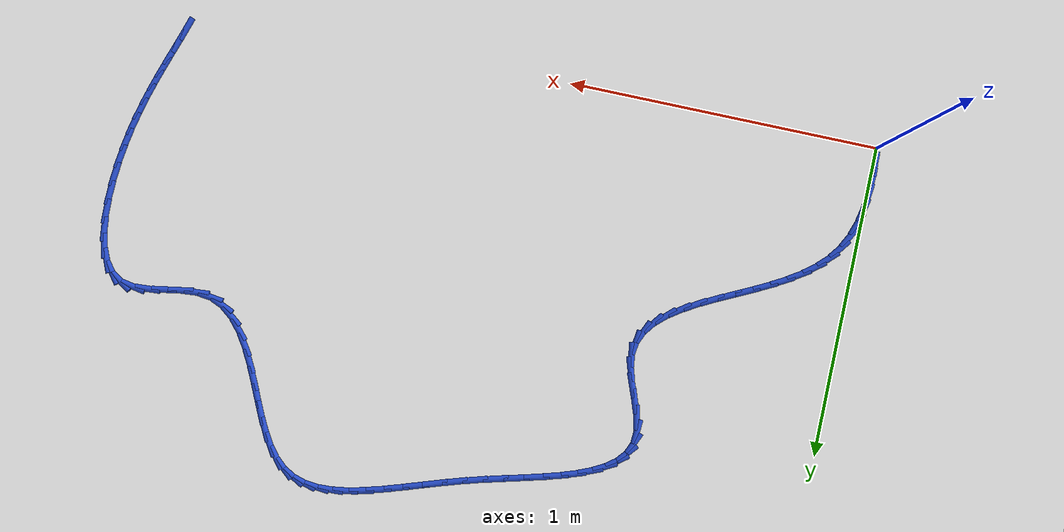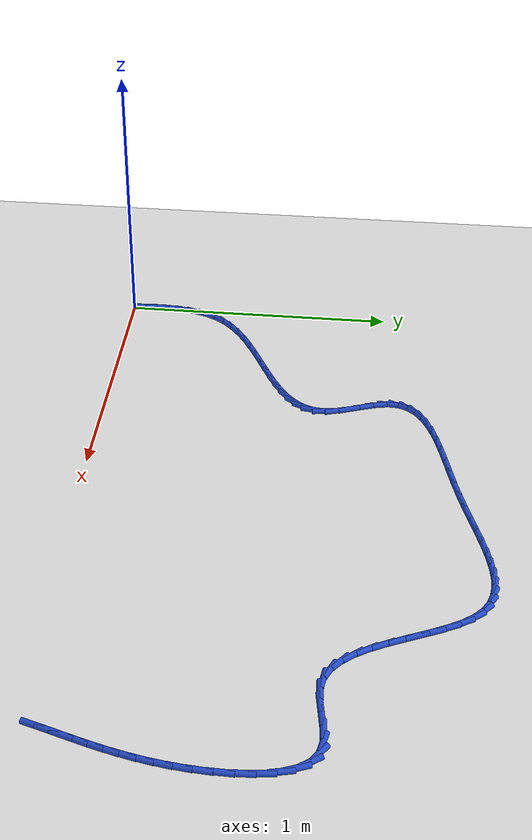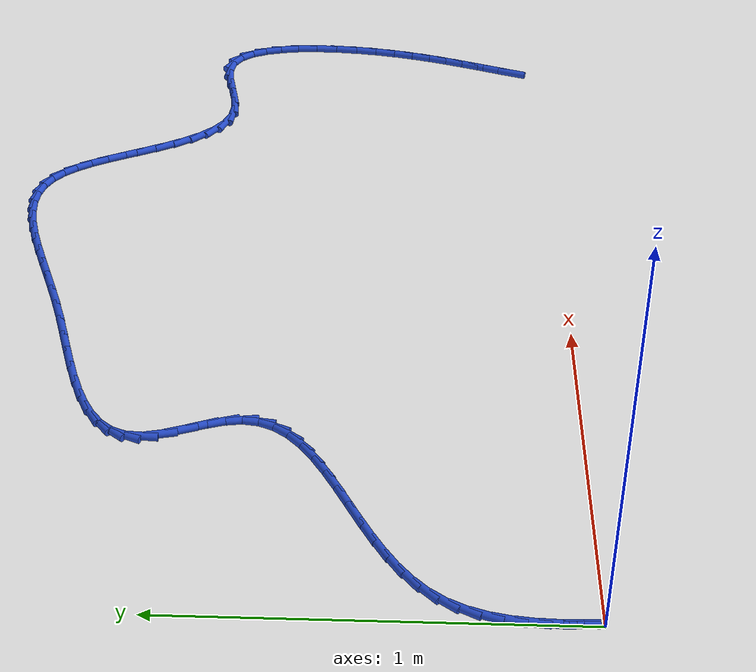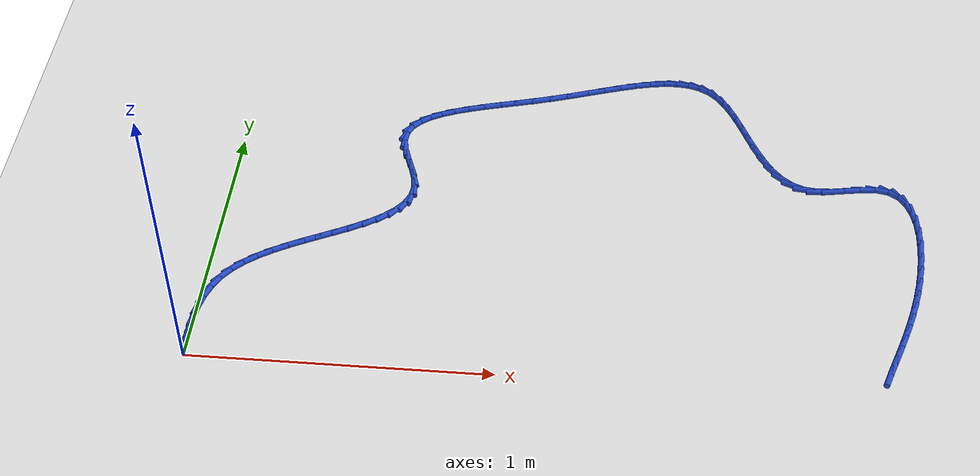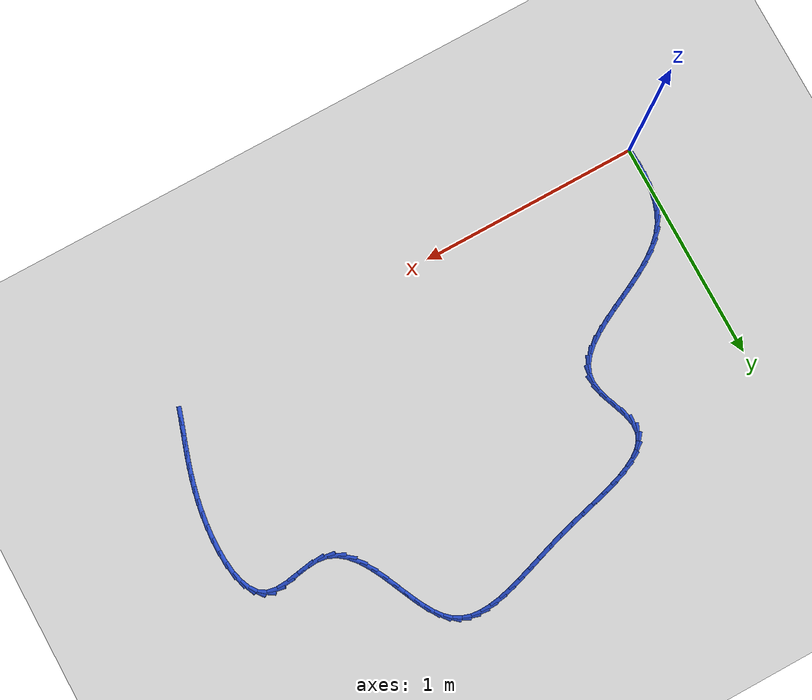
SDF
<sdf version="1.6">
 <world name="default">
  <model name="ground_plane">
   <static>1</static>
   <link name="link">
    <collision name="collision">
     <geometry><plane><normal>0 0 1</normal><size>100 100</size></plane></geometry>
     <surface><friction><ode><mu>100</mu><mu2>50</mu2></ode></friction></surface>
    </collision>
    <visual name="visual">
     <cast_shadows>0</cast_shadows>
     <geometry><plane><normal>0 0 1</normal><size>100 100</size></plane></geometry>
     <material>
      <script><uri>file://media/materials/scripts/gazebo.material</uri><name>Gazebo/WhiteGlow</name></script>
     </material>
    </visual>
   </link>
  </model>
  <model name="line">
   <link name="link_1">
    <pose>-0.002925904967437072 0.051086761017259785 0.01 0 1.57 -1.5534604865196697</pose>
    <collision name="collision">
     <geometry><cylinder><radius>0.01</radius><length>0.08</length></cylinder></geometry>
    </collision>
    <visual name="visual">
     <material>
      <script><name>Gazebo/Blue</name><uri>file://media/materials/scripts/gazebo.material</uri></script>
     </material>
     <geometry><cylinder><radius>0.01</radius><length>0.08</length></cylinder></geometry>
    </visual>
   </link>
   <link name="link_2">
    <pose>-0.003817468521577585 0.1025105295758779 0.01 0 1.57 1.5309589534957653</pose>
    <collision name="collision">
     <geometry><cylinder><radius>0.01</radius><length>0.08</length></cylinder></geometry>
    </collision>
    <visual name="visual">
     <material>
      <script><name>Gazebo/Blue</name><uri>file://media/materials/scripts/gazebo.material</uri></script>
     </material>
     <geometry><cylinder><radius>0.01</radius><length>0.08</length></cylinder></geometry>
    </visual>
   </link>
   <link name="link_3">
    <pose>-0.0017811809256003527 0.15359849311952 0.01 0 1.57 1.4543580626659827</pose>
    <collision name="collision">
     <geometry><cylinder><radius>0.01</radius><length>0.08</length></cylinder></geometry>
    </collision>
    <visual name="visual">
     <material>
      <script><name>Gazebo/Blue</name><uri>file://media/materials/scripts/gazebo.material</uri></script>
     </material>
     <geometry><cylinder><radius>0.01</radius><length>0.08</length></cylinder></geometry>
    </visual>
   </link>
   <link name="link_4">
    <pose>0.004076467557315798 0.20367783909185186 0.01 0 1.57 1.3557250557406852</pose>
    <collision name="collision">
     <geometry><cylinder><radius>0.01</radius><length>0.08</length></cylinder></geometry>
    </collision>
    <visual name="visual">
     <material>
      <script><name>Gazebo/Blue</name><uri>file://media/materials/scripts/gazebo.material</uri></script>
     </material>
     <geometry><cylinder><radius>0.01</radius><length>0.08</length></cylinder></geometry>
    </visual>
   </link>
   <link name="link_5">
    <pose>0.014648986663992034 0.25207575493653933 0.01 0 1.57 1.2328525527008483</pose>
    <collision name="collision">
     <geometry><cylinder><radius>0.01</radius><length>0.08</length></cylinder></geometry>
    </collision>
    <visual name="visual">
     <material>
      <script><name>Gazebo/Blue</name><uri>file://media/materials/scripts/gazebo.material</uri></script>
     </material>
     <geometry><cylinder><radius>0.01</radius><length>0.08</length></cylinder></geometry>
    </visual>
   </link>
   <link name="link_6">
    <pose>0.03082988613124953 0.29811942809724795 0.01 0 1.57 1.0855456857132073</pose>
    <collision name="collision">
     <geometry><cylinder><radius>0.01</radius><length>0.08</length></cylinder></geometry>
    </collision>
    <visual name="visual">
     <material>
      <script><name>Gazebo/Blue</name><uri>file://media/materials/scripts/gazebo.material</uri></script>
     </material>
     <geometry><cylinder><radius>0.01</radius><length>0.08</length></cylinder></geometry>
    </visual>
   </link>
   <link name="link_7">
    <pose>0.053512675695909465 0.3411360460176436 0.01 0 1.57 0.918838790433517</pose>
    <collision name="collision">
     <geometry><cylinder><radius>0.01</radius><length>0.08</length></cylinder></geometry>
    </collision>
    <visual name="visual">
     <material>
      <script><name>Gazebo/Blue</name><uri>file://media/materials/scripts/gazebo.material</uri></script>
     </material>
     <geometry><cylinder><radius>0.01</radius><length>0.08</length></cylinder></geometry>
    </visual>
   </link>
   <link name="link_8">
    <pose>0.08354329892548039 0.38047930402325114 0.01 0 1.57 0.764667883301005</pose>
    <collision name="collision">
     <geometry><cylinder><radius>0.01</radius><length>0.08</length></cylinder></geometry>
    </collision>
    <visual name="visual">
     <material>
      <script><name>Gazebo/Blue</name><uri>file://media/materials/scripts/gazebo.material</uri></script>
     </material>
     <geometry><cylinder><radius>0.01</radius><length>0.08</length></cylinder></geometry>
    </visual>
   </link>
   <link name="link_9">
    <pose>0.12068112088730405 0.4161084306353329 0.01 0 1.57 0.6477522191212495</pose>
    <collision name="collision">
     <geometry><cylinder><radius>0.01</radius><length>0.08</length></cylinder></geometry>
    </collision>
    <visual name="visual">
     <material>
      <script><name>Gazebo/Blue</name><uri>file://media/materials/scripts/gazebo.material</uri></script>
     </material>
     <geometry><cylinder><radius>0.01</radius><length>0.08</length></cylinder></geometry>
    </visual>
   </link>
   <link name="link_10">
    <pose>0.16360304735045483 0.4485858920041277 0.01 0 1.57 0.5635845289567744</pose>
    <collision name="collision">
     <geometry><cylinder><radius>0.01</radius><length>0.08</length></cylinder></geometry>
    </collision>
    <visual name="visual">
     <material>
      <script><name>Gazebo/Blue</name><uri>file://media/materials/scripts/gazebo.material</uri></script>
     </material>
     <geometry><cylinder><radius>0.01</radius><length>0.08</length></cylinder></geometry>
    </visual>
   </link>
   <link name="link_11">
    <pose>0.21093924175880024 0.4785002030463036 0.01 0 1.57 0.5063464724308085</pose>
    <collision name="collision">
     <geometry><cylinder><radius>0.01</radius><length>0.08</length></cylinder></geometry>
    </collision>
    <visual name="visual">
     <material>
      <script><name>Gazebo/Blue</name><uri>file://media/materials/scripts/gazebo.material</uri></script>
     </material>
     <geometry><cylinder><radius>0.01</radius><length>0.08</length></cylinder></geometry>
    </visual>
   </link>
   <link name="link_12">
    <pose>0.2613198675562078 0.5064398786785287 0.01 0 1.57 0.4716977754873825</pose>
    <collision name="collision">
     <geometry><cylinder><radius>0.01</radius><length>0.08</length></cylinder></geometry>
    </collision>
    <visual name="visual">
     <material>
      <script><name>Gazebo/Blue</name><uri>file://media/materials/scripts/gazebo.material</uri></script>
     </material>
     <geometry><cylinder><radius>0.01</radius><length>0.08</length></cylinder></geometry>
    </visual>
   </link>
   <link name="link_13">
    <pose>0.31337508818654486 0.5329934338174719 0.01 0 1.57 0.45714780488812573</pose>
    <collision name="collision">
     <geometry><cylinder><radius>0.01</radius><length>0.08</length></cylinder></geometry>
    </collision>
    <visual name="visual">
     <material>
      <script><name>Gazebo/Blue</name><uri>file://media/materials/scripts/gazebo.material</uri></script>
     </material>
     <geometry><cylinder><radius>0.01</radius><length>0.08</length></cylinder></geometry>
    </visual>
   </link>
   <link name="link_14">
    <pose>0.3657350670936789 0.5587493833798008 0.01 0 1.57 0.4620775457771259</pose>
    <collision name="collision">
     <geometry><cylinder><radius>0.01</radius><length>0.08</length></cylinder></geometry>
    </collision>
    <visual name="visual">
     <material>
      <script><name>Gazebo/Blue</name><uri>file://media/materials/scripts/gazebo.material</uri></script>
     </material>
     <geometry><cylinder><radius>0.01</radius><length>0.08</length></cylinder></geometry>
    </visual>
   </link>
   <link name="link_15">
    <pose>0.41702996772147727 0.5842962422821845 0.01 0 1.57 0.48784564405269903</pose>
    <collision name="collision">
     <geometry><cylinder><radius>0.01</radius><length>0.08</length></cylinder></geometry>
    </collision>
    <visual name="visual">
     <material>
      <script><name>Gazebo/Blue</name><uri>file://media/materials/scripts/gazebo.material</uri></script>
     </material>
     <geometry><cylinder><radius>0.01</radius><length>0.08</length></cylinder></geometry>
    </visual>
   </link>
   <link name="link_16">
    <pose>0.46588995351380774 0.610222525441291 0.01 0 1.57 0.5381492918049732</pose>
    <collision name="collision">
     <geometry><cylinder><radius>0.01</radius><length>0.08</length></cylinder></geometry>
    </collision>
    <visual name="visual">
     <material>
      <script><name>Gazebo/Blue</name><uri>file://media/materials/scripts/gazebo.material</uri></script>
     </material>
     <geometry><cylinder><radius>0.01</radius><length>0.08</length></cylinder></geometry>
    </visual>
   </link>
   <link name="link_17">
    <pose>0.5109451879145376 0.6371167477737885 0.01 0 1.57 0.6196598165027448</pose>
    <collision name="collision">
     <geometry><cylinder><radius>0.01</radius><length>0.08</length></cylinder></geometry>
    </collision>
    <visual name="visual">
     <material>
      <script><name>Gazebo/Blue</name><uri>file://media/materials/scripts/gazebo.material</uri></script>
     </material>
     <geometry><cylinder><radius>0.01</radius><length>0.08</length></cylinder></geometry>
    </visual>
   </link>
   <link name="link_18">
    <pose>0.5508258343675341 0.6655674241963453 0.01 0 1.57 0.7425572486324425</pose>
    <collision name="collision">
     <geometry><cylinder><radius>0.01</radius><length>0.08</length></cylinder></geometry>
    </collision>
    <visual name="visual">
     <material>
      <script><name>Gazebo/Blue</name><uri>file://media/materials/scripts/gazebo.material</uri></script>
     </material>
     <geometry><cylinder><radius>0.01</radius><length>0.08</length></cylinder></geometry>
    </visual>
   </link>
   <link name="link_19">
    <pose>0.5841620563166647 0.6961630696256299 0.01 0 1.57 0.9191818545421</pose>
    <collision name="collision">
     <geometry><cylinder><radius>0.01</radius><length>0.08</length></cylinder></geometry>
    </collision>
    <visual name="visual">
     <material>
      <script><name>Gazebo/Blue</name><uri>file://media/materials/scripts/gazebo.material</uri></script>
     </material>
     <geometry><cylinder><radius>0.01</radius><length>0.08</length></cylinder></geometry>
    </visual>
   </link>
   <link name="link_20">
    <pose>0.6095840172057972 0.729492198978311 0.01 0 1.57 1.1560296487038075</pose>
    <collision name="collision">
     <geometry><cylinder><radius>0.01</radius><length>0.08</length></cylinder></geometry>
    </collision>
    <visual name="visual">
     <material>
      <script><name>Gazebo/Blue</name><uri>file://media/materials/scripts/gazebo.material</uri></script>
     </material>
     <geometry><cylinder><radius>0.01</radius><length>0.08</length></cylinder></geometry>
    </visual>
   </link>
   <link name="link_21">
    <pose>0.6257218804787988 0.7661433271710562 0.01 0 1.57 1.4364113022254412</pose>
    <collision name="collision">
     <geometry><cylinder><radius>0.01</radius><length>0.08</length></cylinder></geometry>
    </collision>
    <visual name="visual">
     <material>
      <script><name>Gazebo/Blue</name><uri>file://media/materials/scripts/gazebo.material</uri></script>
     </material>
     <geometry><cylinder><radius>0.01</radius><length>0.08</length></cylinder></geometry>
    </visual>
   </link>
   <link name="link_22">
    <pose>0.6312058095795372 0.8067049691205342 0.01 0 1.57 -1.433663674513513</pose>
    <collision name="collision">
     <geometry><cylinder><radius>0.01</radius><length>0.08</length></cylinder></geometry>
    </collision>
    <visual name="visual">
     <material>
      <script><name>Gazebo/Blue</name><uri>file://media/materials/scripts/gazebo.material</uri></script>
     </material>
     <geometry><cylinder><radius>0.01</radius><length>0.08</length></cylinder></geometry>
    </visual>
   </link>
   <link name="link_23">
    <pose>0.6250069916845122 0.8516243371982805 0.01 0 1.57 -1.268252917757996</pose>
    <collision name="collision">
     <geometry><cylinder><radius>0.01</radius><length>0.08</length></cylinder></geometry>
    </collision>
    <visual name="visual">
     <material>
      <script><name>Gazebo/Blue</name><uri>file://media/materials/scripts/gazebo.material</uri></script>
     </material>
     <geometry><cylinder><radius>0.01</radius><length>0.08</length></cylinder></geometry>
    </visual>
   </link>
   <link name="link_24">
    <pose>0.6099903521537846 0.8997352806495409 0.01 0 1.57 -1.210693850976044</pose>
    <collision name="collision">
     <geometry><cylinder><radius>0.01</radius><length>0.08</length></cylinder></geometry>
    </collision>
    <visual name="visual">
     <material>
      <script><name>Gazebo/Blue</name><uri>file://media/materials/scripts/gazebo.material</uri></script>
     </material>
     <geometry><cylinder><radius>0.01</radius><length>0.08</length></cylinder></geometry>
    </visual>
   </link>
   <link name="link_25">
    <pose>0.5914997541546244 0.9488445054803473 0.01 0 1.57 -1.237535827203266</pose>
    <collision name="collision">
     <geometry><cylinder><radius>0.01</radius><length>0.08</length></cylinder></geometry>
    </collision>
    <visual name="visual">
     <material>
      <script><name>Gazebo/Blue</name><uri>file://media/materials/scripts/gazebo.material</uri></script>
     </material>
     <geometry><cylinder><radius>0.01</radius><length>0.08</length></cylinder></geometry>
    </visual>
   </link>
   <link name="link_26">
    <pose>0.5749189122884097 0.9967422053296207 0.01 0 1.57 -1.3649385275086428</pose>
    <collision name="collision">
     <geometry><cylinder><radius>0.01</radius><length>0.08</length></cylinder></geometry>
    </collision>
    <visual name="visual">
     <material>
      <script><name>Gazebo/Blue</name><uri>file://media/materials/scripts/gazebo.material</uri></script>
     </material>
     <geometry><cylinder><radius>0.01</radius><length>0.08</length></cylinder></geometry>
    </visual>
   </link>
   <link name="link_27">
    <pose>0.5656315411565188 1.0412185738362816 0.01 0 1.57 1.5066469889825602</pose>
    <collision name="collision">
     <geometry><cylinder><radius>0.01</radius><length>0.08</length></cylinder></geometry>
    </collision>
    <visual name="visual">
     <material>
      <script><name>Gazebo/Blue</name><uri>file://media/materials/scripts/gazebo.material</uri></script>
     </material>
     <geometry><cylinder><radius>0.01</radius><length>0.08</length></cylinder></geometry>
    </visual>
   </link>
   <link name="link_28">
    <pose>0.5681508647052947 1.0804374792606255 0.01 0 1.57 1.1698672302090587</pose>
    <collision name="collision">
     <geometry><cylinder><radius>0.01</radius><length>0.08</length></cylinder></geometry>
    </collision>
    <visual name="visual">
     <material>
      <script><name>Gazebo/Blue</name><uri>file://media/materials/scripts/gazebo.material</uri></script>
     </material>
     <geometry><cylinder><radius>0.01</radius><length>0.08</length></cylinder></geometry>
    </visual>
   </link>
   <link name="link_29">
    <pose>0.5825722993843526 1.114459217508778 0.01 0 1.57 0.8671177979331303</pose>
    <collision name="collision">
     <geometry><cylinder><radius>0.01</radius><length>0.08</length></cylinder></geometry>
    </collision>
    <visual name="visual">
     <material>
      <script><name>Gazebo/Blue</name><uri>file://media/materials/scripts/gazebo.material</uri></script>
     </material>
     <geometry><cylinder><radius>0.01</radius><length>0.08</length></cylinder></geometry>
    </visual>
   </link>
   <link name="link_30">
    <pose>0.6075931768705176 1.1439442388884058 0.01 0 1.57 0.641094063068548</pose>
    <collision name="collision">
     <geometry><cylinder><radius>0.01</radius><length>0.08</length></cylinder></geometry>
    </collision>
    <visual name="visual">
     <material>
      <script><name>Gazebo/Blue</name><uri>file://media/materials/scripts/gazebo.material</uri></script>
     </material>
     <geometry><cylinder><radius>0.01</radius><length>0.08</length></cylinder></geometry>
    </visual>
   </link>
   <link name="link_31">
    <pose>0.6419102780174444 1.1695532301584692 0.01 0 1.57 0.4867917874702019</pose>
    <collision name="collision">
     <geometry><cylinder><radius>0.01</radius><length>0.08</length></cylinder></geometry>
    </collision>
    <visual name="visual">
     <material>
      <script><name>Gazebo/Blue</name><uri>file://media/materials/scripts/gazebo.material</uri></script>
     </material>
     <geometry><cylinder><radius>0.01</radius><length>0.08</length></cylinder></geometry>
    </visual>
   </link>
   <link name="link_32">
    <pose>0.684220383678787 1.1919468780779283 0.01 0 1.57 0.38470469914114663</pose>
    <collision name="collision">
     <geometry><cylinder><radius>0.01</radius><length>0.08</length></cylinder></geometry>
    </collision>
    <visual name="visual">
     <material>
      <script><name>Gazebo/Blue</name><uri>file://media/materials/scripts/gazebo.material</uri></script>
     </material>
     <geometry><cylinder><radius>0.01</radius><length>0.08</length></cylinder></geometry>
    </visual>
   </link>
   <link name="link_33">
    <pose>0.7332202747081993 1.2117858694057422 0.01 0 1.57 0.3187059509382366</pose>
    <collision name="collision">
     <geometry><cylinder><radius>0.01</radius><length>0.08</length></cylinder></geometry>
    </collision>
    <visual name="visual">
     <material>
      <script><name>Gazebo/Blue</name><uri>file://media/materials/scripts/gazebo.material</uri></script>
     </material>
     <geometry><cylinder><radius>0.01</radius><length>0.08</length></cylinder></geometry>
    </visual>
   </link>
   <link name="link_34">
    <pose>0.787606731959336 1.229730890900871 0.01 0 1.57 0.27839579438513723</pose>
    <collision name="collision">
     <geometry><cylinder><radius>0.01</radius><length>0.08</length></cylinder></geometry>
    </collision>
    <visual name="visual">
     <material>
      <script><name>Gazebo/Blue</name><uri>file://media/materials/scripts/gazebo.material</uri></script>
     </material>
     <geometry><cylinder><radius>0.01</radius><length>0.08</length></cylinder></geometry>
    </visual>
   </link>
   <link name="link_35">
    <pose>0.8460765362858507 1.2464426293222741 0.01 0 1.57 0.2576403532458048</pose>
    <collision name="collision">
     <geometry><cylinder><radius>0.01</radius><length>0.08</length></cylinder></geometry>
    </collision>
    <visual name="visual">
     <material>
      <script><name>Gazebo/Blue</name><uri>file://media/materials/scripts/gazebo.material</uri></script>
     </material>
     <geometry><cylinder><radius>0.01</radius><length>0.08</length></cylinder></geometry>
    </visual>
   </link>
   <link name="link_36">
    <pose>0.9073264685413981 1.2625817714289114 0.01 0 1.57 0.25314698224797855</pose>
    <collision name="collision">
     <geometry><cylinder><radius>0.01</radius><length>0.08</length></cylinder></geometry>
    </collision>
    <visual name="visual">
     <material>
      <script><name>Gazebo/Blue</name><uri>file://media/materials/scripts/gazebo.material</uri></script>
     </material>
     <geometry><cylinder><radius>0.01</radius><length>0.08</length></cylinder></geometry>
    </visual>
   </link>
   <link name="link_37">
    <pose>0.9700533095796322 1.2788090039797426 0.01 0 1.57 0.26360612759117724</pose>
    <collision name="collision">
     <geometry><cylinder><radius>0.01</radius><length>0.08</length></cylinder></geometry>
    </collision>
    <visual name="visual">
     <material>
      <script><name>Gazebo/Blue</name><uri>file://media/materials/scripts/gazebo.material</uri></script>
     </material>
     <geometry><cylinder><radius>0.01</radius><length>0.08</length></cylinder></geometry>
    </visual>
   </link>
   <link name="link_38">
    <pose>1.0329538402542071 1.2957850137337277 0.01 0 1.57 0.28773147898943485</pose>
    <collision name="collision">
     <geometry><cylinder><radius>0.01</radius><length>0.08</length></cylinder></geometry>
    </collision>
    <visual name="visual">
     <material>
      <script><name>Gazebo/Blue</name><uri>file://media/materials/scripts/gazebo.material</uri></script>
     </material>
     <geometry><cylinder><radius>0.01</radius><length>0.08</length></cylinder></geometry>
    </visual>
   </link>
   <link name="link_39">
    <pose>1.0947882218757106 1.3140845230467404 0.01 0 1.57 0.3101198656704801</pose>
    <collision name="collision">
     <geometry><cylinder><radius>0.01</radius><length>0.08</length></cylinder></geometry>
    </collision>
    <visual name="visual">
     <material>
      <script><name>Gazebo/Blue</name><uri>file://media/materials/scripts/gazebo.material</uri></script>
     </material>
     <geometry><cylinder><radius>0.01</radius><length>0.08</length></cylinder></geometry>
    </visual>
   </link>
   <link name="link_40">
    <pose>1.1549853256258091 1.3333752673628163 0.01 0 1.57 0.32086154427678587</pose>
    <collision name="collision">
     <geometry><cylinder><radius>0.01</radius><length>0.08</length></cylinder></geometry>
    </collision>
    <visual name="visual">
     <material>
      <script><name>Gazebo/Blue</name><uri>file://media/materials/scripts/gazebo.material</uri></script>
     </material>
     <geometry><cylinder><radius>0.01</radius><length>0.08</length></cylinder></geometry>
    </visual>
   </link>
   <link name="link_41">
    <pose>1.2133751744726042 1.3527808905315764 0.01 0 1.57 0.31904794317265384</pose>
    <collision name="collision">
     <geometry><cylinder><radius>0.01</radius><length>0.08</length></cylinder></geometry>
    </collision>
    <visual name="visual">
     <material>
      <script><name>Gazebo/Blue</name><uri>file://media/materials/scripts/gazebo.material</uri></script>
     </material>
     <geometry><cylinder><radius>0.01</radius><length>0.08</length></cylinder></geometry>
    </visual>
   </link>
   <link name="link_42">
    <pose>1.2697932398542697 1.3714176465146504 0.01 0 1.57 0.3032388721224452</pose>
    <collision name="collision">
     <geometry><cylinder><radius>0.01</radius><length>0.08</length></cylinder></geometry>
    </collision>
    <visual name="visual">
     <material>
      <script><name>Gazebo/Blue</name><uri>file://media/materials/scripts/gazebo.material</uri></script>
     </material>
     <geometry><cylinder><radius>0.01</radius><length>0.08</length></cylinder></geometry>
    </visual>
   </link>
   <link name="link_43">
    <pose>1.3240749932089795 1.388401789273668 0.01 0 1.57 0.27110117103073994</pose>
    <collision name="collision">
     <geometry><cylinder><radius>0.01</radius><length>0.08</length></cylinder></geometry>
    </collision>
    <visual name="visual">
     <material>
      <script><name>Gazebo/Blue</name><uri>file://media/materials/scripts/gazebo.material</uri></script>
     </material>
     <geometry><cylinder><radius>0.01</radius><length>0.08</length></cylinder></geometry>
    </visual>
   </link>
   <link name="link_44">
    <pose>1.3760559059749082 1.40284957277026 0.01 0 1.57 0.2191350966766762</pose>
    <collision name="collision">
     <geometry><cylinder><radius>0.01</radius><length>0.08</length></cylinder></geometry>
    </collision>
    <visual name="visual">
     <material>
      <script><name>Gazebo/Blue</name><uri>file://media/materials/scripts/gazebo.material</uri></script>
     </material>
     <geometry><cylinder><radius>0.01</radius><length>0.08</length></cylinder></geometry>
    </visual>
   </link>
   <link name="link_45">
    <pose>1.4255714495902292 1.413877250966055 0.01 0 1.57 0.14243790097048115</pose>
    <collision name="collision">
     <geometry><cylinder><radius>0.01</radius><length>0.08</length></cylinder></geometry>
    </collision>
    <visual name="visual">
     <material>
      <script><name>Gazebo/Blue</name><uri>file://media/materials/scripts/gazebo.material</uri></script>
     </material>
     <geometry><cylinder><radius>0.01</radius><length>0.08</length></cylinder></geometry>
    </visual>
   </link>
   <link name="link_46">
    <pose>1.4724570954931167 1.4206010778226845 0.01 0 1.57 0.03482798386878905</pose>
    <collision name="collision">
     <geometry><cylinder><radius>0.01</radius><length>0.08</length></cylinder></geometry>
    </collision>
    <visual name="visual">
     <material>
      <script><name>Gazebo/Blue</name><uri>file://media/materials/scripts/gazebo.material</uri></script>
     </material>
     <geometry><cylinder><radius>0.01</radius><length>0.08</length></cylinder></geometry>
    </visual>
   </link>
   <link name="link_47">
    <pose>1.5165483151217447 1.4221373073017776 0.01 0 1.57 -0.1098132986529564</pose>
    <collision name="collision">
     <geometry><cylinder><radius>0.01</radius><length>0.08</length></cylinder></geometry>
    </collision>
    <visual name="visual">
     <material>
      <script><name>Gazebo/Blue</name><uri>file://media/materials/scripts/gazebo.material</uri></script>
     </material>
     <geometry><cylinder><radius>0.01</radius><length>0.08</length></cylinder></geometry>
    </visual>
   </link>
   <link name="link_48">
    <pose>1.5576805799142872 1.4176021933649643 0.01 0 1.57 -0.2935691346779938</pose>
    <collision name="collision">
     <geometry><cylinder><radius>0.01</radius><length>0.08</length></cylinder></geometry>
    </collision>
    <visual name="visual">
     <material>
      <script><name>Gazebo/Blue</name><uri>file://media/materials/scripts/gazebo.material</uri></script>
     </material>
     <geometry><cylinder><radius>0.01</radius><length>0.08</length></cylinder></geometry>
    </visual>
   </link>
   <link name="link_49">
    <pose>1.5956893613089176 1.4061119899738745 0.01 0 1.57 -0.5079723118283043</pose>
    <collision name="collision">
     <geometry><cylinder><radius>0.01</radius><length>0.08</length></cylinder></geometry>
    </collision>
    <visual name="visual">
     <material>
      <script><name>Gazebo/Blue</name><uri>file://media/materials/scripts/gazebo.material</uri></script>
     </material>
     <geometry><cylinder><radius>0.01</radius><length>0.08</length></cylinder></geometry>
    </visual>
   </link>
   <link name="link_50">
    <pose>1.6304101307438112 1.3867829510901386 0.01 0 1.57 -0.7303041335675124</pose>
    <collision name="collision">
     <geometry><cylinder><radius>0.01</radius><length>0.08</length></cylinder></geometry>
    </collision>
    <visual name="visual">
     <material>
      <script><name>Gazebo/Blue</name><uri>file://media/materials/scripts/gazebo.material</uri></script>
     </material>
     <geometry><cylinder><radius>0.01</radius><length>0.08</length></cylinder></geometry>
    </visual>
   </link>
   <link name="link_51">
    <pose>1.6616923494191098 1.3587708070804276 0.01 0 1.57 -0.9119578785659509</pose>
    <collision name="collision">
     <geometry><cylinder><radius>0.01</radius><length>0.08</length></cylinder></geometry>
    </collision>
    <visual name="visual">
     <material>
      <script><name>Gazebo/Blue</name><uri>file://media/materials/scripts/gazebo.material</uri></script>
     </material>
     <geometry><cylinder><radius>0.01</radius><length>0.08</length></cylinder></geometry>
    </visual>
   </link>
   <link name="link_52">
    <pose>1.6898161751977725 1.322446631070586 0.01 0 1.57 -1.0297347315521022</pose>
    <collision name="collision">
     <geometry><cylinder><radius>0.01</radius><length>0.08</length></cylinder></geometry>
    </collision>
    <visual name="visual">
     <material>
      <script><name>Gazebo/Blue</name><uri>file://media/materials/scripts/gazebo.material</uri></script>
     </material>
     <geometry><cylinder><radius>0.01</radius><length>0.08</length></cylinder></geometry>
    </visual>
   </link>
   <link name="link_53">
    <pose>1.7155633926999772 1.279596989966249 0.01 0 1.57 -1.0999959998668456</pose>
    <collision name="collision">
     <geometry><cylinder><radius>0.01</radius><length>0.08</length></cylinder></geometry>
    </collision>
    <visual name="visual">
     <material>
      <script><name>Gazebo/Blue</name><uri>file://media/materials/scripts/gazebo.material</uri></script>
     </material>
     <geometry><cylinder><radius>0.01</radius><length>0.08</length></cylinder></geometry>
    </visual>
   </link>
   <link name="link_54">
    <pose>1.7397440657627796 1.2320882491587057 0.01 0 1.57 -1.1349829347576557</pose>
    <collision name="collision">
     <geometry><cylinder><radius>0.01</radius><length>0.08</length></cylinder></geometry>
    </collision>
    <visual name="visual">
     <material>
      <script><name>Gazebo/Blue</name><uri>file://media/materials/scripts/gazebo.material</uri></script>
     </material>
     <geometry><cylinder><radius>0.01</radius><length>0.08</length></cylinder></geometry>
    </visual>
   </link>
   <link name="link_55">
    <pose>1.7631682582232375 1.181786774039246 0.01 0 1.57 -1.1410607110863586</pose>
    <collision name="collision">
     <geometry><cylinder><radius>0.01</radius><length>0.08</length></cylinder></geometry>
    </collision>
    <visual name="visual">
     <material>
      <script><name>Gazebo/Blue</name><uri>file://media/materials/scripts/gazebo.material</uri></script>
     </material>
     <geometry><cylinder><radius>0.01</radius><length>0.08</length></cylinder></geometry>
    </visual>
   </link>
   <link name="link_56">
    <pose>1.786646033918407 1.1305589299991607 0.01 0 1.57 -1.1199965464238453</pose>
    <collision name="collision">
     <geometry><cylinder><radius>0.01</radius><length>0.08</length></cylinder></geometry>
    </collision>
    <visual name="visual">
     <material>
      <script><name>Gazebo/Blue</name><uri>file://media/materials/scripts/gazebo.material</uri></script>
     </material>
     <geometry><cylinder><radius>0.01</radius><length>0.08</length></cylinder></geometry>
    </visual>
   </link>
   <link name="link_57">
    <pose>1.810987456685345 1.0802710824297397 0.01 0 1.57 -1.0695663815188812</pose>
    <collision name="collision">
     <geometry><cylinder><radius>0.01</radius><length>0.08</length></cylinder></geometry>
    </collision>
    <visual name="visual">
     <material>
      <script><name>Gazebo/Blue</name><uri>file://media/materials/scripts/gazebo.material</uri></script>
     </material>
     <geometry><cylinder><radius>0.01</radius><length>0.08</length></cylinder></geometry>
    </visual>
   </link>
   <link name="link_58">
    <pose>1.8370025903611087 1.0327895967222729 0.01 0 1.57 -0.983445157615883</pose>
    <collision name="collision">
     <geometry><cylinder><radius>0.01</radius><length>0.08</length></cylinder></geometry>
    </collision>
    <visual name="visual">
     <material>
      <script><name>Gazebo/Blue</name><uri>file://media/materials/scripts/gazebo.material</uri></script>
     </material>
     <geometry><cylinder><radius>0.01</radius><length>0.08</length></cylinder></geometry>
    </visual>
   </link>
   <link name="link_59">
    <pose>1.8655014987827543 0.9899808382680507 0.01 0 1.57 -0.8510802155269899</pose>
    <collision name="collision">
     <geometry><cylinder><radius>0.01</radius><length>0.08</length></cylinder></geometry>
    </collision>
    <visual name="visual">
     <material>
      <script><name>Gazebo/Blue</name><uri>file://media/materials/scripts/gazebo.material</uri></script>
     </material>
     <geometry><cylinder><radius>0.01</radius><length>0.08</length></cylinder></geometry>
    </visual>
   </link>
   <link name="link_60">
    <pose>1.8972942457873394 0.9537111724583636 0.01 0 1.57 -0.660080695817832</pose>
    <collision name="collision">
     <geometry><cylinder><radius>0.01</radius><length>0.08</length></cylinder></geometry>
    </collision>
    <visual name="visual">
     <material>
      <script><name>Gazebo/Blue</name><uri>file://media/materials/scripts/gazebo.material</uri></script>
     </material>
     <geometry><cylinder><radius>0.01</radius><length>0.08</length></cylinder></geometry>
    </visual>
   </link>
   <link name="link_61">
    <pose>1.9331908952119206 0.9258469646845007 0.01 0 1.57 -0.407003883285448</pose>
    <collision name="collision">
     <geometry><cylinder><radius>0.01</radius><length>0.08</length></cylinder></geometry>
    </collision>
    <visual name="visual">
     <material>
      <script><name>Gazebo/Blue</name><uri>file://media/materials/scripts/gazebo.material</uri></script>
     </material>
     <geometry><cylinder><radius>0.01</radius><length>0.08</length></cylinder></geometry>
    </visual>
   </link>
   <link name="link_62">
    <pose>1.9740015108935538 0.9082545803377529 0.01 0 1.57 -0.12229285884908145</pose>
    <collision name="collision">
     <geometry><cylinder><radius>0.01</radius><length>0.08</length></cylinder></geometry>
    </collision>
    <visual name="visual">
     <material>
      <script><name>Gazebo/Blue</name><uri>file://media/materials/scripts/gazebo.material</uri></script>
     </material>
     <geometry><cylinder><radius>0.01</radius><length>0.08</length></cylinder></geometry>
    </visual>
   </link>
   <link name="link_63">
    <pose>2.0204100396931026 0.9025506853351482 0.01 0 1.57 0.07956466956215329</pose>
    <collision name="collision">
     <geometry><cylinder><radius>0.01</radius><length>0.08</length></cylinder></geometry>
    </collision>
    <visual name="visual">
     <material>
      <script><name>Gazebo/Blue</name><uri>file://media/materials/scripts/gazebo.material</uri></script>
     </material>
     <geometry><cylinder><radius>0.01</radius><length>0.08</length></cylinder></geometry>
    </visual>
   </link>
   <link name="link_64">
    <pose>2.0712058103587356 0.9066007840852384 0.01 0 1.57 0.16556797552031732</pose>
    <collision name="collision">
     <geometry><cylinder><radius>0.01</radius><length>0.08</length></cylinder></geometry>
    </collision>
    <visual name="visual">
     <material>
      <script><name>Gazebo/Blue</name><uri>file://media/materials/scripts/gazebo.material</uri></script>
     </material>
     <geometry><cylinder><radius>0.01</radius><length>0.08</length></cylinder></geometry>
    </visual>
   </link>
   <link name="link_65">
    <pose>2.123715807744107 0.9153750808342276 0.01 0 1.57 0.1615241554821695</pose>
    <collision name="collision">
     <geometry><cylinder><radius>0.01</radius><length>0.08</length></cylinder></geometry>
    </collision>
    <visual name="visual">
     <material>
      <script><name>Gazebo/Blue</name><uri>file://media/materials/scripts/gazebo.material</uri></script>
     </material>
     <geometry><cylinder><radius>0.01</radius><length>0.08</length></cylinder></geometry>
    </visual>
   </link>
   <link name="link_66">
    <pose>2.1752291763225764 0.9237688595174286 0.01 0 1.57 0.060765819901236875</pose>
    <collision name="collision">
     <geometry><cylinder><radius>0.01</radius><length>0.08</length></cylinder></geometry>
    </collision>
    <visual name="visual">
     <material>
      <script><name>Gazebo/Blue</name><uri>file://media/materials/scripts/gazebo.material</uri></script>
     </material>
     <geometry><cylinder><radius>0.01</radius><length>0.08</length></cylinder></geometry>
    </visual>
   </link>
   <link name="link_67">
    <pose>2.2230350605675033 0.9266774040701549 0.01 0 1.57 -0.18344426221319177</pose>
    <collision name="collision">
     <geometry><cylinder><radius>0.01</radius><length>0.08</length></cylinder></geometry>
    </collision>
    <visual name="visual">
     <material>
      <script><name>Gazebo/Blue</name><uri>file://media/materials/scripts/gazebo.material</uri></script>
     </material>
     <geometry><cylinder><radius>0.01</radius><length>0.08</length></cylinder></geometry>
    </visual>
   </link>
   <link name="link_68">
    <pose>2.2644238071172076 0.9189985463443986 0.01 0 1.57 -0.5782449538051715</pose>
    <collision name="collision">
     <geometry><cylinder><radius>0.01</radius><length>0.08</length></cylinder></geometry>
    </collision>
    <visual name="visual">
     <material>
      <script><name>Gazebo/Blue</name><uri>file://media/materials/scripts/gazebo.material</uri></script>
     </material>
     <geometry><cylinder><radius>0.01</radius><length>0.08</length></cylinder></geometry>
    </visual>
   </link>
   <link name="link_69">
    <pose>2.297519875023271 0.8973979695299976 0.01 0 1.57 -0.9326365782893373</pose>
    <collision name="collision">
     <geometry><cylinder><radius>0.01</radius><length>0.08</length></cylinder></geometry>
    </collision>
    <visual name="visual">
     <material>
      <script><name>Gazebo/Blue</name><uri>file://media/materials/scripts/gazebo.material</uri></script>
     </material>
     <geometry><cylinder><radius>0.01</radius><length>0.08</length></cylinder></geometry>
    </visual>
   </link>
   <link name="link_70">
    <pose>2.322738429727097 0.8633963719100156 0.01 0 1.57 -1.1800853348972389</pose>
    <collision name="collision">
     <geometry><cylinder><radius>0.01</radius><length>0.08</length></cylinder></geometry>
    </collision>
    <visual name="visual">
     <material>
      <script><name>Gazebo/Blue</name><uri>file://media/materials/scripts/gazebo.material</uri></script>
     </material>
     <geometry><cylinder><radius>0.01</radius><length>0.08</length></cylinder></geometry>
    </visual>
   </link>
   <link name="link_71">
    <pose>2.3408844138704716 0.8193405612153615 0.01 0 1.57 -1.345226761503367</pose>
    <collision name="collision">
     <geometry><cylinder><radius>0.01</radius><length>0.08</length></cylinder></geometry>
    </collision>
    <visual name="visual">
     <material>
      <script><name>Gazebo/Blue</name><uri>file://media/materials/scripts/gazebo.material</uri></script>
     </material>
     <geometry><cylinder><radius>0.01</radius><length>0.08</length></cylinder></geometry>
    </visual>
   </link>
   <link name="link_72">
    <pose>2.352762770095183 0.7675773451769455 0.01 0 1.57 -1.4589533438065025</pose>
    <collision name="collision">
     <geometry><cylinder><radius>0.01</radius><length>0.08</length></cylinder></geometry>
    </collision>
    <visual name="visual">
     <material>
      <script><name>Gazebo/Blue</name><uri>file://media/materials/scripts/gazebo.material</uri></script>
     </material>
     <geometry><cylinder><radius>0.01</radius><length>0.08</length></cylinder></geometry>
    </visual>
   </link>
   <link name="link_73">
    <pose>2.359178441043017 0.7104535315256767 0.01 0 1.57 -1.5415728833626006</pose>
    <collision name="collision">
     <geometry><cylinder><radius>0.01</radius><length>0.08</length></cylinder></geometry>
    </collision>
    <visual name="visual">
     <material>
      <script><name>Gazebo/Blue</name><uri>file://media/materials/scripts/gazebo.material</uri></script>
     </material>
     <geometry><cylinder><radius>0.01</radius><length>0.08</length></cylinder></geometry>
    </visual>
   </link>
   <link name="link_74">
    <pose>2.360936369355763 0.6503159279924644 0.01 0 1.57 1.536357420712673</pose>
    <collision name="collision">
     <geometry><cylinder><radius>0.01</radius><length>0.08</length></cylinder></geometry>
    </collision>
    <visual name="visual">
     <material>
      <script><name>Gazebo/Blue</name><uri>file://media/materials/scripts/gazebo.material</uri></script>
     </material>
     <geometry><cylinder><radius>0.01</radius><length>0.08</length></cylinder></geometry>
    </visual>
   </link>
   <link name="link_75">
    <pose>2.358841497675207 0.5895113423082188 0.01 0 1.57 1.4839469481372423</pose>
    <collision name="collision">
     <geometry><cylinder><radius>0.01</radius><length>0.08</length></cylinder></geometry>
    </collision>
    <visual name="visual">
     <material>
      <script><name>Gazebo/Blue</name><uri>file://media/materials/scripts/gazebo.material</uri></script>
     </material>
     <geometry><cylinder><radius>0.01</radius><length>0.08</length></cylinder></geometry>
    </visual>
   </link>
   <link name="link_76">
    <pose>2.3536882588807484 0.5303252466520341 0.01 0 1.57 1.4365955951990008</pose>
    <collision name="collision">
     <geometry><cylinder><radius>0.01</radius><length>0.08</length></cylinder></geometry>
    </collision>
    <visual name="visual">
     <material>
      <script><name>Gazebo/Blue</name><uri>file://media/materials/scripts/gazebo.material</uri></script>
     </material>
     <geometry><cylinder><radius>0.01</radius><length>0.08</length></cylinder></geometry>
    </visual>
   </link>
   <link name="link_77">
    <pose>2.346051382010172 0.4737609094894954 0.01 0 1.57 1.3925924618248295</pose>
    <collision name="collision">
     <geometry><cylinder><radius>0.01</radius><length>0.08</length></cylinder></geometry>
    </collision>
    <visual name="visual">
     <material>
      <script><name>Gazebo/Blue</name><uri>file://media/materials/scripts/gazebo.material</uri></script>
     </material>
     <geometry><cylinder><radius>0.01</radius><length>0.08</length></cylinder></geometry>
    </visual>
   </link>
   <link name="link_78">
    <pose>2.336297471379851 0.4196069719556161 0.01 0 1.57 1.352926938373691</pose>
    <collision name="collision">
     <geometry><cylinder><radius>0.01</radius><length>0.08</length></cylinder></geometry>
    </collision>
    <visual name="visual">
     <material>
      <script><name>Gazebo/Blue</name><uri>file://media/materials/scripts/gazebo.material</uri></script>
     </material>
     <geometry><cylinder><radius>0.01</radius><length>0.08</length></cylinder></geometry>
    </visual>
   </link>
   <link name="link_79">
    <pose>2.324784939496168 0.3676042673313399 0.01 0 1.57 1.3185982631230722</pose>
    <collision name="collision">
     <geometry><cylinder><radius>0.01</radius><length>0.08</length></cylinder></geometry>
    </collision>
    <visual name="visual">
     <material>
      <script><name>Gazebo/Blue</name><uri>file://media/materials/scripts/gazebo.material</uri></script>
     </material>
     <geometry><cylinder><radius>0.01</radius><length>0.08</length></cylinder></geometry>
    </visual>
   </link>
   <link name="link_80">
    <pose>2.3118721988655015 0.31749362889761196 0.01 0 1.57 1.2905190699480227</pose>
    <collision name="collision">
     <geometry><cylinder><radius>0.01</radius><length>0.08</length></cylinder></geometry>
    </collision>
    <visual name="visual">
     <material>
      <script><name>Gazebo/Blue</name><uri>file://media/materials/scripts/gazebo.material</uri></script>
     </material>
     <geometry><cylinder><radius>0.01</radius><length>0.08</length></cylinder></geometry>
    </visual>
   </link>
   <link name="link_81">
    <pose>2.297917661994232 0.2690158899353767 0.01 0 1.57 1.2694997687255014</pose>
    <collision name="collision">
     <geometry><cylinder><radius>0.01</radius><length>0.08</length></cylinder></geometry>
    </collision>
    <visual name="visual">
     <material>
      <script><name>Gazebo/Blue</name><uri>file://media/materials/scripts/gazebo.material</uri></script>
     </material>
     <geometry><cylinder><radius>0.01</radius><length>0.08</length></cylinder></geometry>
    </visual>
   </link>
   <link name="link_82">
    <pose>2.2832797413887365 0.22191188372557757 0.01 0 1.57 1.2562434245355838</pose>
    <collision name="collision">
     <geometry><cylinder><radius>0.01</radius><length>0.08</length></cylinder></geometry>
    </collision>
    <visual name="visual">
     <material>
      <script><name>Gazebo/Blue</name><uri>file://media/materials/scripts/gazebo.material</uri></script>
     </material>
     <geometry><cylinder><radius>0.01</radius><length>0.08</length></cylinder></geometry>
    </visual>
   </link>
   <link name="link_83">
    <pose>2.268316849555398 0.17592244354916037 0.01 0 1.57 1.2513452799544837</pose>
    <collision name="collision">
     <geometry><cylinder><radius>0.01</radius><length>0.08</length></cylinder></geometry>
    </collision>
    <visual name="visual">
     <material>
      <script><name>Gazebo/Blue</name><uri>file://media/materials/scripts/gazebo.material</uri></script>
     </material>
     <geometry><cylinder><radius>0.01</radius><length>0.08</length></cylinder></geometry>
    </visual>
   </link>
   <link name="link_84">
    <pose>2.253387399000595 0.13078840268706848 0.01 0 1.57 1.2552894413733688</pose>
    <collision name="collision">
     <geometry><cylinder><radius>0.01</radius><length>0.08</length></cylinder></geometry>
    </collision>
    <visual name="visual">
     <material>
      <script><name>Gazebo/Blue</name><uri>file://media/materials/scripts/gazebo.material</uri></script>
     </material>
     <geometry><cylinder><radius>0.01</radius><length>0.08</length></cylinder></geometry>
    </visual>
   </link>
   <link name="link_85">
    <pose>2.238849802230707 0.0862505944202473 0.01 0 1.57 1.2684351007929269</pose>
    <collision name="collision">
     <geometry><cylinder><radius>0.01</radius><length>0.08</length></cylinder></geometry>
    </collision>
    <visual name="visual">
     <material>
      <script><name>Gazebo/Blue</name><uri>file://media/materials/scripts/gazebo.material</uri></script>
     </material>
     <geometry><cylinder><radius>0.01</radius><length>0.08</length></cylinder></geometry>
    </visual>
   </link>
   <link name="link_171">
    <pose>-0.003094082708892885 0.05122142984014312 0.01 0 1.57 -1.5104636180703261</pose>
    <collision name="collision">
     <geometry><cylinder><radius>0.01</radius><length>0.08</length></cylinder></geometry>
    </collision>
    <visual name="visual">
     <material>
      <script><name>Gazebo/Blue</name><uri>file://media/materials/scripts/gazebo.material</uri></script>
     </material>
     <geometry><cylinder><radius>0.01</radius><length>0.08</length></cylinder></geometry>
    </visual>
   </link>
  </model>
 </world>
</sdf>
